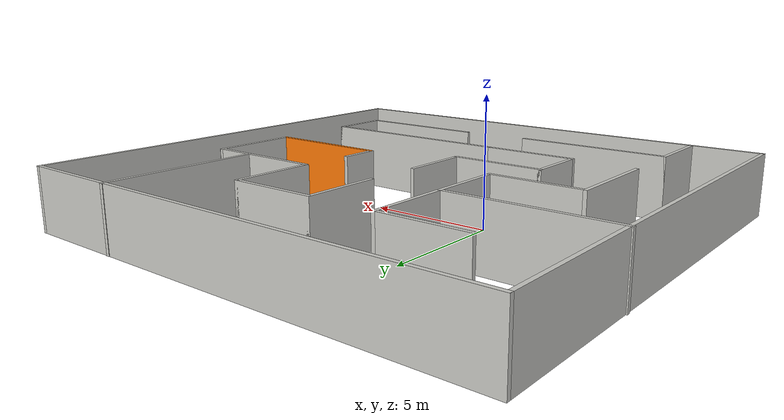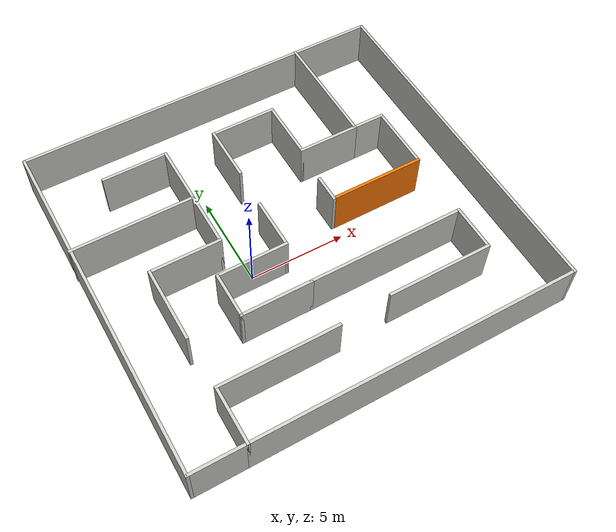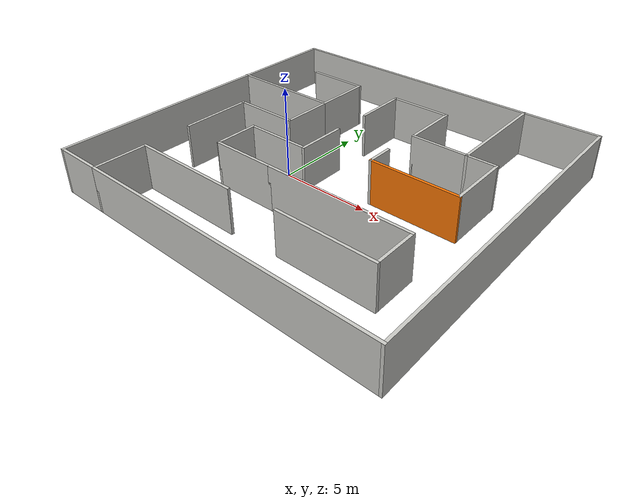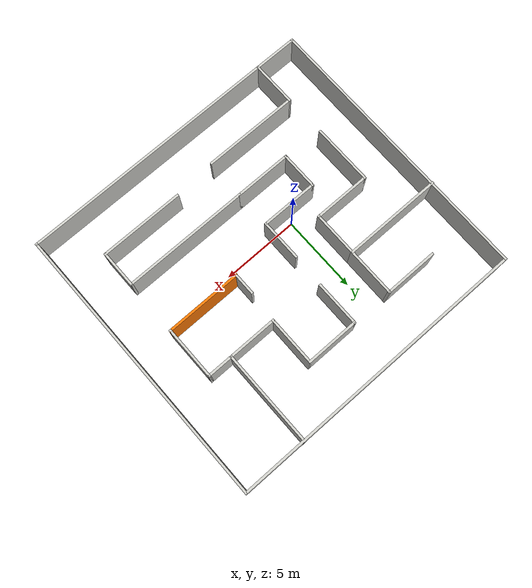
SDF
<?xml version='1.0'?>
<sdf version='1.7'>
  <model name='my_world'>
    <pose>2.48529 0.95272 0 0 -0 0</pose>
    <link name='Wall_0'>
      <collision name='Wall_0_Collision'>
        <geometry>
          <box>
            <size>3.75 0.15 2.5</size>
          </box>
        </geometry>
        <pose>0 0 1.25 0 -0 0</pose>
      </collision>
      <visual name='Wall_0_Visual'>
        <pose>0 0 1.25 0 -0 0</pose>
        <geometry>
          <box>
            <size>3.75 0.15 2.5</size>
          </box>
        </geometry>
        <material>
          <script>
            <uri>file://media/materials/scripts/gazebo.material</uri>
            <name>Gazebo/CeilingTiled</name>
          </script>
          <ambient>0.996078 0.47451 0.0196078 1</ambient>
        </material>
        <meta>
          <layer>0</layer>
        </meta>
      </visual>
      <pose>-2.6753 -3.78272 0 0 -0 0</pose>
    </link>
    <link name='Wall_10'>
      <collision name='Wall_10_Collision'>
        <geometry>
          <box>
            <size>17 0.15 2.5</size>
          </box>
        </geometry>
        <pose>0 0 1.25 0 -0 0</pose>
      </collision>
      <visual name='Wall_10_Visual'>
        <pose>0 0 1.25 0 -0 0</pose>
        <geometry>
          <box>
            <size>17 0.15 2.5</size>
          </box>
        </geometry>
        <material>
          <script>
            <uri>file://media/materials/scripts/gazebo.material</uri>
            <name>Gazebo/CeilingTiled</name>
          </script>
          <ambient>0.996078 0.47451 0.0196078 1</ambient>
        </material>
        <meta>
          <layer>0</layer>
        </meta>
      </visual>
      <pose>1.39773 -9.1852 0 0 -0 0</pose>
    </link>
    <link name='Wall_11'>
      <collision name='Wall_11_Collision'>
        <geometry>
          <box>
            <size>18.5 0.15 2.5</size>
          </box>
        </geometry>
        <pose>0 0 1.25 0 -0 0</pose>
      </collision>
      <visual name='Wall_11_Visual'>
        <pose>0 0 1.25 0 -0 0</pose>
        <geometry>
          <box>
            <size>18.5 0.15 2.5</size>
          </box>
        </geometry>
        <material>
          <script>
            <uri>file://media/materials/scripts/gazebo.material</uri>
            <name>Gazebo/CeilingTiled</name>
          </script>
          <ambient>0.996078 0.47451 0.0196078 1</ambient>
        </material>
        <meta>
          <layer>0</layer>
        </meta>
      </visual>
      <pose>9.82273 -0.010203 0 0 -0 1.5708</pose>
    </link>
    <link name='Wall_12'>
      <collision name='Wall_12_Collision'>
        <geometry>
          <box>
            <size>19.75 0.15 2.5</size>
          </box>
        </geometry>
        <pose>0 0 1.25 0 -0 0</pose>
      </collision>
      <visual name='Wall_12_Visual'>
        <pose>0 0 1.25 0 -0 0</pose>
        <geometry>
          <box>
            <size>19.75 0.15 2.5</size>
          </box>
        </geometry>
        <material>
          <script>
            <uri>file://media/materials/scripts/gazebo.material</uri>
            <name>Gazebo/CeilingTiled</name>
          </script>
          <ambient>0.996078 0.47451 0.0196078 1</ambient>
        </material>
        <meta>
          <layer>0</layer>
        </meta>
      </visual>
      <pose>0.022729 9.1648 0 0 -0 3.14159</pose>
    </link>
    <link name='Wall_13'>
      <collision name='Wall_13_Collision'>
        <geometry>
          <box>
            <size>18.5 0.15 2.5</size>
          </box>
        </geometry>
        <pose>0 0 1.25 0 -0 0</pose>
      </collision>
      <visual name='Wall_13_Visual'>
        <pose>0 0 1.25 0 -0 0</pose>
        <geometry>
          <box>
            <size>18.5 0.15 2.5</size>
          </box>
        </geometry>
        <material>
          <script>
            <uri>file://media/materials/scripts/gazebo.material</uri>
            <name>Gazebo/CeilingTiled</name>
          </script>
          <ambient>0.996078 0.47451 0.0196078 1</ambient>
        </material>
        <meta>
          <layer>0</layer>
        </meta>
      </visual>
      <pose>-9.77727 -0.010203 0 0 -0 -1.5708</pose>
    </link>
    <link name='Wall_14'>
      <collision name='Wall_14_Collision'>
        <geometry>
          <box>
            <size>2.9 0.15 2.5</size>
          </box>
        </geometry>
        <pose>0 0 1.25 0 -0 0</pose>
      </collision>
      <visual name='Wall_14_Visual'>
        <pose>0 0 1.25 0 -0 0</pose>
        <geometry>
          <box>
            <size>2.9 0.15 2.5</size>
          </box>
        </geometry>
        <material>
          <script>
            <uri>file://media/materials/scripts/gazebo.material</uri>
            <name>Gazebo/CeilingTiled</name>
          </script>
          <ambient>0.996078 0.47451 0.0196078 1</ambient>
        </material>
        <meta>
          <layer>0</layer>
        </meta>
      </visual>
      <pose>-8.40227 -9.1852 0 0 -0 0</pose>
    </link>
    <link name='Wall_16'>
      <collision name='Wall_16_Collision'>
        <geometry>
          <box>
            <size>3 0.15 2.5</size>
          </box>
        </geometry>
        <pose>0 0 1.25 0 -0 0</pose>
      </collision>
      <visual name='Wall_16_Visual'>
        <pose>0 0 1.25 0 -0 0</pose>
        <geometry>
          <box>
            <size>3 0.15 2.5</size>
          </box>
        </geometry>
        <material>
          <script>
            <uri>file://media/materials/scripts/gazebo.material</uri>
            <name>Gazebo/CeilingTiled</name>
          </script>
          <ambient>0.996078 0.47451 0.0196078 1</ambient>
        </material>
        <meta>
          <layer>0</layer>
        </meta>
      </visual>
      <pose>-7.02727 -7.7602 0 0 -0 1.5708</pose>
    </link>
    <link name='Wall_17'>
      <collision name='Wall_17_Collision'>
        <geometry>
          <box>
            <size>6.25 0.15 2.5</size>
          </box>
        </geometry>
        <pose>0 0 1.25 0 -0 0</pose>
      </collision>
      <visual name='Wall_17_Visual'>
        <pose>0 0 1.25 0 -0 0</pose>
        <geometry>
          <box>
            <size>6.25 0.15 2.5</size>
          </box>
        </geometry>
        <material>
          <script>
            <uri>file://media/materials/scripts/gazebo.material</uri>
            <name>Gazebo/CeilingTiled</name>
          </script>
          <ambient>0.996078 0.47451 0.0196078 1</ambient>
        </material>
        <meta>
          <layer>0</layer>
        </meta>
      </visual>
      <pose>-3.97727 -6.3352 0 0 -0 0</pose>
    </link>
    <link name='Wall_19'>
      <collision name='Wall_19_Collision'>
        <geometry>
          <box>
            <size>4 0.15 2.5</size>
          </box>
        </geometry>
        <pose>0 0 1.25 0 -0 0</pose>
      </collision>
      <visual name='Wall_19_Visual'>
        <pose>0 0 1.25 0 -0 0</pose>
        <geometry>
          <box>
            <size>4 0.15 2.5</size>
          </box>
        </geometry>
        <material>
          <script>
            <uri>file://media/materials/scripts/gazebo.material</uri>
            <name>Gazebo/CeilingTiled</name>
          </script>
          <ambient>0.996078 0.47451 0.0196078 1</ambient>
        </material>
        <meta>
          <layer>0</layer>
        </meta>
      </visual>
      <pose>-7.07273 -1.67327 0 0 -0 1.5708</pose>
    </link>
    <link name='Wall_20'>
      <collision name='Wall_20_Collision'>
        <geometry>
          <box>
            <size>3.75 0.15 2.5</size>
          </box>
        </geometry>
        <pose>0 0 1.25 0 -0 0</pose>
      </collision>
      <visual name='Wall_20_Visual'>
        <pose>0 0 1.25 0 -0 0</pose>
        <geometry>
          <box>
            <size>3.75 0.15 2.5</size>
          </box>
        </geometry>
        <material>
          <script>
            <uri>file://media/materials/scripts/gazebo.material</uri>
            <name>Gazebo/CeilingTiled</name>
          </script>
          <ambient>0.996078 0.47451 0.0196078 1</ambient>
        </material>
        <meta>
          <layer>0</layer>
        </meta>
      </visual>
      <pose>-5.27273 0.25173 0 0 -0 0</pose>
    </link>
    <link name='Wall_21'>
      <collision name='Wall_21_Collision'>
        <geometry>
          <box>
            <size>3 0.15 2.5</size>
          </box>
        </geometry>
        <pose>0 0 1.25 0 -0 0</pose>
      </collision>
      <visual name='Wall_21_Visual'>
        <pose>0 0 1.25 0 -0 0</pose>
        <geometry>
          <box>
            <size>3 0.15 2.5</size>
          </box>
        </geometry>
        <material>
          <script>
            <uri>file://media/materials/scripts/gazebo.material</uri>
            <name>Gazebo/CeilingTiled</name>
          </script>
          <ambient>0.996078 0.47451 0.0196078 1</ambient>
        </material>
        <meta>
          <layer>0</layer>
        </meta>
      </visual>
      <pose>-3.47273 1.67673 0 0 -0 1.5708</pose>
    </link>
    <link name='Wall_22'>
      <collision name='Wall_22_Collision'>
        <geometry>
          <box>
            <size>6.5 0.15 2.5</size>
          </box>
        </geometry>
        <pose>0 0 1.25 0 -0 0</pose>
      </collision>
      <visual name='Wall_22_Visual'>
        <pose>0 0 1.25 0 -0 0</pose>
        <geometry>
          <box>
            <size>6.5 0.15 2.5</size>
          </box>
        </geometry>
        <material>
          <script>
            <uri>file://media/materials/scripts/gazebo.material</uri>
            <name>Gazebo/CeilingTiled</name>
          </script>
          <ambient>0.996078 0.47451 0.0196078 1</ambient>
        </material>
        <meta>
          <layer>0</layer>
        </meta>
      </visual>
      <pose>-6.64773 3.10173 0 0 -0 3.14159</pose>
    </link>
    <link name='Wall_24'>
      <collision name='Wall_24_Collision'>
        <geometry>
          <box>
            <size>3.25 0.15 2.5</size>
          </box>
        </geometry>
        <pose>0 0 1.25 0 -0 0</pose>
      </collision>
      <visual name='Wall_24_Visual'>
        <pose>0 0 1.25 0 -0 0</pose>
        <geometry>
          <box>
            <size>3.25 0.15 2.5</size>
          </box>
        </geometry>
        <material>
          <script>
            <uri>file://media/materials/scripts/gazebo.material</uri>
            <name>Gazebo/CeilingTiled</name>
          </script>
          <ambient>0.996078 0.47451 0.0196078 1</ambient>
        </material>
        <meta>
          <layer>0</layer>
        </meta>
      </visual>
      <pose>-3.47273 4.65173 0 0 -0 1.5708</pose>
    </link>
    <link name='Wall_25'>
      <collision name='Wall_25_Collision'>
        <geometry>
          <box>
            <size>3.5 0.15 2.5</size>
          </box>
        </geometry>
        <pose>0 0 1.25 0 -0 0</pose>
      </collision>
      <visual name='Wall_25_Visual'>
        <pose>0 0 1.25 0 -0 0</pose>
        <geometry>
          <box>
            <size>3.5 0.15 2.5</size>
          </box>
        </geometry>
        <material>
          <script>
            <uri>file://media/materials/scripts/gazebo.material</uri>
            <name>Gazebo/CeilingTiled</name>
          </script>
          <ambient>0.996078 0.47451 0.0196078 1</ambient>
        </material>
        <meta>
          <layer>0</layer>
        </meta>
      </visual>
      <pose>-5.14773 6.20173 0 0 -0 3.14159</pose>
    </link>
    <link name='Wall_27'>
      <collision name='Wall_27_Collision'>
        <geometry>
          <box>
            <size>3 0.15 2.5</size>
          </box>
        </geometry>
        <pose>0 0 1.25 0 -0 0</pose>
      </collision>
      <visual name='Wall_27_Visual'>
        <pose>0 0 1.25 0 -0 0</pose>
        <geometry>
          <box>
            <size>3 0.15 2.5</size>
          </box>
        </geometry>
        <material>
          <script>
            <uri>file://media/materials/scripts/gazebo.material</uri>
            <name>Gazebo/CeilingTiled</name>
          </script>
          <ambient>0.996078 0.47451 0.0196078 1</ambient>
        </material>
        <meta>
          <layer>0</layer>
        </meta>
      </visual>
      <pose>-0.797205 4.7602 0 0 -0 1.5708</pose>
    </link>
    <link name='Wall_28'>
      <collision name='Wall_28_Collision'>
        <geometry>
          <box>
            <size>3.5 0.15 2.5</size>
          </box>
        </geometry>
        <pose>0 0 1.25 0 -0 0</pose>
      </collision>
      <visual name='Wall_28_Visual'>
        <pose>0 0 1.25 0 -0 0</pose>
        <geometry>
          <box>
            <size>3.5 0.15 2.5</size>
          </box>
        </geometry>
        <material>
          <script>
            <uri>file://media/materials/scripts/gazebo.material</uri>
            <name>Gazebo/CeilingTiled</name>
          </script>
          <ambient>0.996078 0.47451 0.0196078 1</ambient>
        </material>
        <meta>
          <layer>0</layer>
        </meta>
      </visual>
      <pose>0.877795 6.1852 0 0 -0 0</pose>
    </link>
    <link name='Wall_29'>
      <collision name='Wall_29_Collision'>
        <geometry>
          <box>
            <size>3.25 0.15 2.5</size>
          </box>
        </geometry>
        <pose>0 0 1.25 0 -0 0</pose>
      </collision>
      <visual name='Wall_29_Visual'>
        <pose>0 0 1.25 0 -0 0</pose>
        <geometry>
          <box>
            <size>3.25 0.15 2.5</size>
          </box>
        </geometry>
        <material>
          <script>
            <uri>file://media/materials/scripts/gazebo.material</uri>
            <name>Gazebo/CeilingTiled</name>
          </script>
          <ambient>0.996078 0.47451 0.0196078 1</ambient>
        </material>
        <meta>
          <layer>0</layer>
        </meta>
      </visual>
      <pose>2.5528 4.6352 0 0 -0 -1.5708</pose>
    </link>
    <link name='Wall_30'>
      <collision name='Wall_30_Collision'>
        <geometry>
          <box>
            <size>3.25 0.15 2.5</size>
          </box>
        </geometry>
        <pose>0 0 1.25 0 -0 0</pose>
      </collision>
      <visual name='Wall_30_Visual'>
        <pose>0 0 1.25 0 -0 0</pose>
        <geometry>
          <box>
            <size>3.25 0.15 2.5</size>
          </box>
        </geometry>
        <material>
          <script>
            <uri>file://media/materials/scripts/gazebo.material</uri>
            <name>Gazebo/CeilingTiled</name>
          </script>
          <ambient>0.996078 0.47451 0.0196078 1</ambient>
        </material>
        <meta>
          <layer>0</layer>
        </meta>
      </visual>
      <pose>4.1028 3.0852 0 0 -0 0</pose>
    </link>
    <link name='Wall_31'>
      <collision name='Wall_31_Collision'>
        <geometry>
          <box>
            <size>6.25 0.15 2.5</size>
          </box>
        </geometry>
        <pose>0 0 1.25 0 -0 0</pose>
      </collision>
      <visual name='Wall_31_Visual'>
        <pose>0 0 1.25 0 -0 0</pose>
        <geometry>
          <box>
            <size>6.25 0.15 2.5</size>
          </box>
        </geometry>
        <material>
          <script>
            <uri>file://media/materials/scripts/gazebo.material</uri>
            <name>Gazebo/CeilingTiled</name>
          </script>
          <ambient>0.996078 0.47451 0.0196078 1</ambient>
        </material>
        <meta>
          <layer>0</layer>
        </meta>
      </visual>
      <pose>5.6528 6.1352 0 0 -0 1.5708</pose>
    </link>
    <link name='Wall_33'>
      <collision name='Wall_33_Collision'>
        <geometry>
          <box>
            <size>1.75 0.15 2.5</size>
          </box>
        </geometry>
        <pose>0 0 1.25 0 -0 0</pose>
      </collision>
      <visual name='Wall_33_Visual'>
        <pose>0 0 1.25 0 -0 0</pose>
        <geometry>
          <box>
            <size>1.75 0.15 2.5</size>
          </box>
        </geometry>
        <material>
          <script>
            <uri>file://media/materials/scripts/gazebo.material</uri>
            <name>Gazebo/CeilingTiled</name>
          </script>
          <ambient>0.996078 0.47451 0.0196078 1</ambient>
        </material>
        <meta>
          <layer>0</layer>
        </meta>
      </visual>
      <pose>6.4528 3.0852 0 0 -0 0</pose>
    </link>
    <link name='Wall_34'>
      <collision name='Wall_34_Collision'>
        <geometry>
          <box>
            <size>3.5 0.15 2.5</size>
          </box>
        </geometry>
        <pose>0 0 1.25 0 -0 0</pose>
      </collision>
      <visual name='Wall_34_Visual'>
        <pose>0 0 1.25 0 -0 0</pose>
        <geometry>
          <box>
            <size>3.5 0.15 2.5</size>
          </box>
        </geometry>
        <material>
          <script>
            <uri>file://media/materials/scripts/gazebo.material</uri>
            <name>Gazebo/CeilingTiled</name>
          </script>
          <ambient>0.996078 0.47451 0.0196078 1</ambient>
        </material>
        <meta>
          <layer>0</layer>
        </meta>
      </visual>
      <pose>7.25279 1.4102 0 0 -0 -1.5708</pose>
    </link>
    <link name='Wall_35'>
      <collision name='Wall_35_Collision'>
        <geometry>
          <box>
            <size>5 0.15 2.5</size>
          </box>
        </geometry>
        <pose>0 0 1.25 0 -0 0</pose>
      </collision>
      <visual name='Wall_35_Visual'>
        <pose>0 0 1.25 0 -0 0</pose>
        <geometry>
          <box>
            <size>5 0.15 2.5</size>
          </box>
        </geometry>
        <material>
          <script>
            <uri>file://media/materials/scripts/gazebo.material</uri>
            <name>Gazebo/Grey</name>
          </script>
          <ambient>0.996078 0.47451 0.0196078 1</ambient>
        </material>
        <meta>
          <layer>0</layer>
        </meta>
      </visual>
      <pose>4.8278 -0.264797 0 0 -0 3.14159</pose>
    </link>
    <link name='Wall_36'>
      <collision name='Wall_36_Collision'>
        <geometry>
          <box>
            <size>1.5 0.15 2.5</size>
          </box>
        </geometry>
        <pose>0 0 1.25 0 -0 0</pose>
      </collision>
      <visual name='Wall_36_Visual'>
        <pose>0 0 1.25 0 -0 0</pose>
        <geometry>
          <box>
            <size>1.5 0.15 2.5</size>
          </box>
        </geometry>
        <material>
          <script>
            <uri>file://media/materials/scripts/gazebo.material</uri>
            <name>Gazebo/CeilingTiled</name>
          </script>
          <ambient>0.996078 0.47451 0.0196078 1</ambient>
        </material>
        <meta>
          <layer>0</layer>
        </meta>
      </visual>
      <pose>2.40279 0.410203 0 0 -0 1.5708</pose>
    </link>
    <link name='Wall_38'>
      <collision name='Wall_38_Collision'>
        <geometry>
          <box>
            <size>8.25 0.15 2.5</size>
          </box>
        </geometry>
        <pose>0 0 1.25 0 -0 0</pose>
      </collision>
      <visual name='Wall_38_Visual'>
        <pose>0 0 1.25 0 -0 0</pose>
        <geometry>
          <box>
            <size>8.25 0.15 2.5</size>
          </box>
        </geometry>
        <material>
          <script>
            <uri>file://media/materials/scripts/gazebo.material</uri>
            <name>Gazebo/CeilingTiled</name>
          </script>
          <ambient>0.996078 0.47451 0.0196078 1</ambient>
        </material>
        <meta>
          <layer>0</layer>
        </meta>
      </visual>
      <pose>3.1747 -3.78272 0 0 -0 0</pose>
    </link>
    <link name='Wall_39'>
      <collision name='Wall_39_Collision'>
        <geometry>
          <box>
            <size>2.5 0.15 2.5</size>
          </box>
        </geometry>
        <pose>0 0 1.25 0 -0 0</pose>
      </collision>
      <visual name='Wall_39_Visual'>
        <pose>0 0 1.25 0 -0 0</pose>
        <geometry>
          <box>
            <size>2.5 0.15 2.5</size>
          </box>
        </geometry>
        <material>
          <script>
            <uri>file://media/materials/scripts/gazebo.material</uri>
            <name>Gazebo/CeilingTiled</name>
          </script>
          <ambient>0.996078 0.47451 0.0196078 1</ambient>
        </material>
        <meta>
          <layer>0</layer>
        </meta>
      </visual>
      <pose>7.22471 -4.95772 0 0 -0 -1.5708</pose>
    </link>
    <link name='Wall_40'>
      <collision name='Wall_40_Collision'>
        <geometry>
          <box>
            <size>5.5 0.15 2.5</size>
          </box>
        </geometry>
        <pose>0 0 1.25 0 -0 0</pose>
      </collision>
      <visual name='Wall_40_Visual'>
        <pose>0 0 1.25 0 -0 0</pose>
        <geometry>
          <box>
            <size>5.5 0.15 2.5</size>
          </box>
        </geometry>
        <material>
          <script>
            <uri>file://media/materials/scripts/gazebo.material</uri>
            <name>Gazebo/CeilingTiled</name>
          </script>
          <ambient>0.996078 0.47451 0.0196078 1</ambient>
        </material>
        <meta>
          <layer>0</layer>
        </meta>
      </visual>
      <pose>4.54971 -6.13272 0 0 -0 3.14159</pose>
    </link>
    <link name='Wall_5'>
      <collision name='Wall_5_Collision'>
        <geometry>
          <box>
            <size>2.5 0.15 2.5</size>
          </box>
        </geometry>
        <pose>0 0 1.25 0 -0 0</pose>
      </collision>
      <visual name='Wall_5_Visual'>
        <pose>0 0 1.25 0 -0 0</pose>
        <geometry>
          <box>
            <size>2.5 0.15 2.5</size>
          </box>
        </geometry>
        <material>
          <script>
            <uri>file://media/materials/scripts/gazebo.material</uri>
            <name>Gazebo/CeilingTiled</name>
          </script>
          <ambient>0.996078 0.47451 0.0196078 1</ambient>
        </material>
        <meta>
          <layer>0</layer>
        </meta>
      </visual>
      <pose>-4.4753 -2.60772 0 0 -0 1.5708</pose>
    </link>
    <link name='Wall_6'>
      <collision name='Wall_6_Collision'>
        <geometry>
          <box>
            <size>3.75 0.15 2.5</size>
          </box>
        </geometry>
        <pose>0 0 1.25 0 -0 0</pose>
      </collision>
      <visual name='Wall_6_Visual'>
        <pose>0 0 1.25 0 -0 0</pose>
        <geometry>
          <box>
            <size>3.75 0.15 2.5</size>
          </box>
        </geometry>
        <material>
          <script>
            <uri>file://media/materials/scripts/gazebo.material</uri>
            <name>Gazebo/CeilingTiled</name>
          </script>
          <ambient>0.996078 0.47451 0.0196078 1</ambient>
        </material>
        <meta>
          <layer>0</layer>
        </meta>
      </visual>
      <pose>-2.6753 -1.43272 0 0 -0 0</pose>
    </link>
    <link name='Wall_7'>
      <collision name='Wall_7_Collision'>
        <geometry>
          <box>
            <size>2.75 0.15 2.5</size>
          </box>
        </geometry>
        <pose>0 0 1.25 0 -0 0</pose>
      </collision>
      <visual name='Wall_7_Visual'>
        <pose>0 0 1.25 0 -0 0</pose>
        <geometry>
          <box>
            <size>2.75 0.15 2.5</size>
          </box>
        </geometry>
        <material>
          <script>
            <uri>file://media/materials/scripts/gazebo.material</uri>
            <name>Gazebo/CeilingTiled</name>
          </script>
          <ambient>0.996078 0.47451 0.0196078 1</ambient>
        </material>
        <meta>
          <layer>0</layer>
        </meta>
      </visual>
      <pose>-0.875295 -0.13272 0 0 -0 1.5708</pose>
    </link>
    <static>1</static>
  </model>
</sdf>
